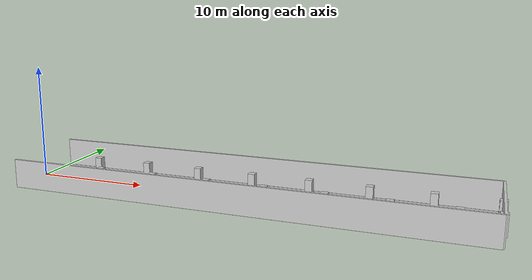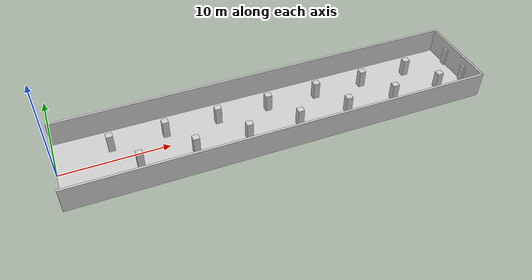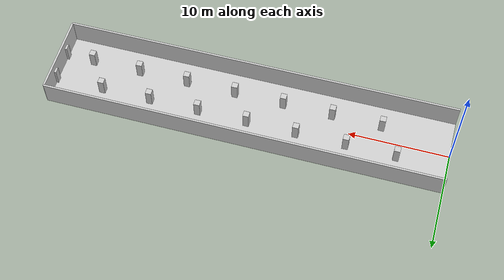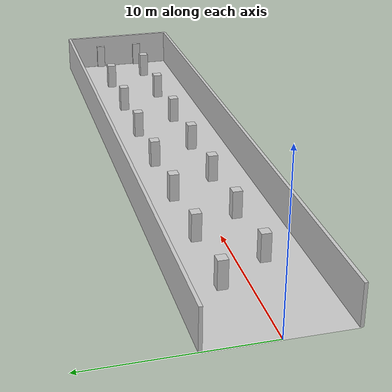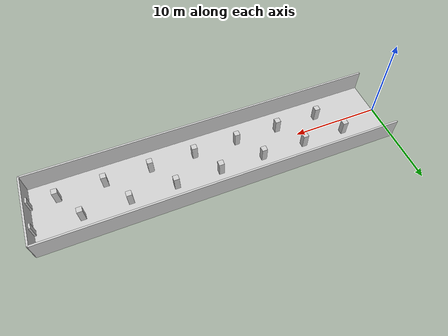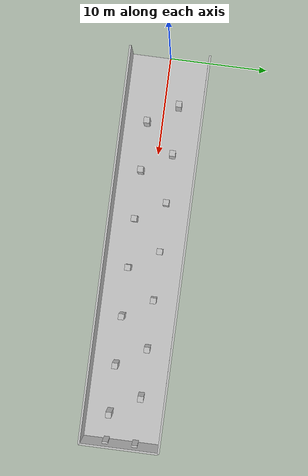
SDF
<?xml version="1.0" ?>
<sdf version="1.9">
  <world name="default">

    <physics name="1ms" type="ignore">
      <max_step_size>0.001</max_step_size>
      <real_time_factor>1.0</real_time_factor>
    </physics>

    <plugin filename="gz-sim-physics-system"
      name="gz::sim::systems::Physics">
    </plugin>

    <plugin
      filename="gz-sim-sensors-system"
      name="gz::sim::systems::Sensors">
      <render_engine>ogre2</render_engine>
    </plugin>

    <plugin filename="gz-sim-user-commands-system"
      name="gz::sim::systems::UserCommands">
    </plugin>
    <plugin filename="gz-sim-scene-broadcaster-system"
      name="gz::sim::systems::SceneBroadcaster">
    </plugin>

    <scene>
      <ambient>0.8 0.8 0.8 1</ambient>
      <background>0.4 0.4 0.4 1</background>
      <shadows>false</shadows>
    </scene>

    <light type="directional" name="sun">
      <cast_shadows>false</cast_shadows>
      <pose>0 0 20 0 0 0</pose>
      <diffuse>1 1 1 1</diffuse>
      <specular>0.0 0.0 0.0 1</specular>
      <direction>-0.5 0.1 -0.9</direction>
    </light>

    <!-- AXES -->

    <!-- ================= RUNWAY GROUND (40m x 8m, centered at x=20) ================= -->
    <model name="runway_ground">
      <static>true</static>
      <pose>20 0 0 0 0 3.14159</pose>
      <link name="link">
        <collision name="collision">
          <geometry>
            <plane><normal>0 0 1</normal><size>40 8</size></plane>
          </geometry>
        </collision>
        <visual name="visual">
          <cast_shadows>false</cast_shadows>
          <geometry>
            <plane><normal>0 0 1</normal><size>40 8</size></plane>
          </geometry>
          <material>
            <ambient>0.8 0.8 0.8 1</ambient>
            <diffuse>0.8 0.8 0.8 1</diffuse>
            <specular>0.0 0.0 0.0 1</specular>
            <pbr><metal>
              <albedo_map>file://materials/textures/runway.png</albedo_map>
              <roughness>1.0</roughness><metalness>0</metalness>
            </metal></pbr>
          </material>
        </visual>
      </link>
    </model>

    <!-- ================= WALLS ================= -->

    <model name="wall_left">
      <static>true</static>
      <pose>20 4 1.25 0 0 0</pose>
      <link name="link">
        <collision name="collision">
          <geometry><box><size>40 0.2 2.5</size></box></geometry>
        </collision>
        <visual name="visual">
          <cast_shadows>false</cast_shadows>
          <geometry><box><size>40 0.2 2.5</size></box></geometry>
          <material>
            <ambient>0.8 0.8 0.8 1</ambient><diffuse>0.8 0.8 0.8 1</diffuse>
            <specular>0.0 0.0 0.0 1</specular>
            <pbr><metal>
              <albedo_map>file://materials/textures/plaster_bricks.jpg</albedo_map>
              <roughness>1.0</roughness><metalness>0</metalness>
            </metal></pbr>
          </material>
        </visual>
      </link>
    </model>

    <model name="wall_right">
      <static>true</static>
      <pose>20 -4 1.25 0 0 0</pose>
      <link name="link">
        <collision name="collision">
          <geometry><box><size>40 0.2 2.5</size></box></geometry>
        </collision>
        <visual name="visual">
          <cast_shadows>false</cast_shadows>
          <geometry><box><size>40 0.2 2.5</size></box></geometry>
          <material>
            <ambient>0.8 0.8 0.8 1</ambient><diffuse>0.8 0.8 0.8 1</diffuse>
            <specular>0.0 0.0 0.0 1</specular>
            <pbr><metal>
              <albedo_map>file://materials/textures/plaster_bricks.jpg</albedo_map>
              <roughness>1.0</roughness><metalness>0</metalness>
            </metal></pbr>
          </material>
        </visual>
      </link>
    </model>

    <model name="wall_back">
      <static>true</static>
      <pose>40 0 1.25 0 0 0</pose>
      <link name="link">
        <collision name="collision">
          <geometry><box><size>0.2 8 2.5</size></box></geometry>
        </collision>
        <visual name="visual">
          <cast_shadows>false</cast_shadows>
          <geometry><box><size>0.2 8 2.5</size></box></geometry>
          <material>
            <ambient>0.8 0.8 0.8 1</ambient><diffuse>0.8 0.8 0.8 1</diffuse>
            <specular>0.0 0.0 0.0 1</specular>
            <pbr><metal>
              <albedo_map>file://materials/textures/plaster_bricks.jpg</albedo_map>
              <roughness>1.0</roughness><metalness>0</metalness>
            </metal></pbr>
          </material>
        </visual>
      </link>
    </model>

    <!-- ================= PILLARS ================= -->

    <!-- LEFT SIDE (y=+1.5) -->
    <model name="pillar_L0">
      <static>true</static>
      <pose>5 1.5 0.875 0 0 0</pose>
      <link name="link">
        <collision name="collision"><geometry><box><size>0.6 0.6 1.75</size></box></geometry></collision>
        <visual name="visual">
          <cast_shadows>false</cast_shadows>
          <geometry><box><size>0.6 0.6 1.75</size></box></geometry>
          <material><ambient>0.8 0.8 0.8 1</ambient><diffuse>0.8 0.8 0.8 1</diffuse><specular>0.0 0.0 0.0 1</specular>
            <pbr><metal><albedo_map>file://materials/media/wall3.png</albedo_map><roughness>1.0</roughness><metalness>0</metalness></metal></pbr>
          </material>
        </visual>
      </link>
    </model>

    <model name="pillar_L1">
      <static>true</static>
      <pose>10 1.5 0.875 0 0 0</pose>
      <link name="link">
        <collision name="collision"><geometry><box><size>0.6 0.6 1.75</size></box></geometry></collision>
        <visual name="visual">
          <cast_shadows>false</cast_shadows>
          <geometry><box><size>0.6 0.6 1.75</size></box></geometry>
          <material><ambient>0.8 0.8 0.8 1</ambient><diffuse>0.8 0.8 0.8 1</diffuse><specular>0.0 0.0 0.0 1</specular>
            <pbr><metal><albedo_map>file://materials/media/wall7.png</albedo_map><roughness>1.0</roughness><metalness>0</metalness></metal></pbr>
          </material>
        </visual>
      </link>
    </model>

    <model name="pillar_L2">
      <static>true</static>
      <pose>15 1.5 0.875 0 0 0</pose>
      <link name="link">
        <collision name="collision"><geometry><box><size>0.6 0.6 1.75</size></box></geometry></collision>
        <visual name="visual">
          <cast_shadows>false</cast_shadows>
          <geometry><box><size>0.6 0.6 1.75</size></box></geometry>
          <material><ambient>0.8 0.8 0.8 1</ambient><diffuse>0.8 0.8 0.8 1</diffuse><specular>0.0 0.0 0.0 1</specular>
            <pbr><metal><albedo_map>file://materials/media/wall12.png</albedo_map><roughness>1.0</roughness><metalness>0</metalness></metal></pbr>
          </material>
        </visual>
      </link>
    </model>

    <model name="pillar_L3">
      <static>true</static>
      <pose>20 1.5 0.875 0 0 0</pose>
      <link name="link">
        <collision name="collision"><geometry><box><size>0.6 0.6 1.75</size></box></geometry></collision>
        <visual name="visual">
          <cast_shadows>false</cast_shadows>
          <geometry><box><size>0.6 0.6 1.75</size></box></geometry>
          <material><ambient>0.8 0.8 0.8 1</ambient><diffuse>0.8 0.8 0.8 1</diffuse><specular>0.0 0.0 0.0 1</specular>
            <pbr><metal><albedo_map>file://materials/media/wall4.png</albedo_map><roughness>1.0</roughness><metalness>0</metalness></metal></pbr>
          </material>
        </visual>
      </link>
    </model>

    <model name="pillar_L4">
      <static>true</static>
      <pose>25 1.5 0.875 0 0 0</pose>
      <link name="link">
        <collision name="collision"><geometry><box><size>0.6 0.6 1.75</size></box></geometry></collision>
        <visual name="visual">
          <cast_shadows>false</cast_shadows>
          <geometry><box><size>0.6 0.6 1.75</size></box></geometry>
          <material><ambient>0.8 0.8 0.8 1</ambient><diffuse>0.8 0.8 0.8 1</diffuse><specular>0.0 0.0 0.0 1</specular>
            <pbr><metal><albedo_map>file://materials/media/wall24.png</albedo_map><roughness>1.0</roughness><metalness>0</metalness></metal></pbr>
          </material>
        </visual>
      </link>
    </model>

    <model name="pillar_L5">
      <static>true</static>
      <pose>30 1.5 0.875 0 0 0</pose>
      <link name="link">
        <collision name="collision"><geometry><box><size>0.6 0.6 1.75</size></box></geometry></collision>
        <visual name="visual">
          <cast_shadows>false</cast_shadows>
          <geometry><box><size>0.6 0.6 1.75</size></box></geometry>
          <material><ambient>0.8 0.8 0.8 1</ambient><diffuse>0.8 0.8 0.8 1</diffuse><specular>0.0 0.0 0.0 1</specular>
            <pbr><metal><albedo_map>file://materials/media/wall20.png</albedo_map><roughness>1.0</roughness><metalness>0</metalness></metal></pbr>
          </material>
        </visual>
      </link>
    </model>

    <model name="pillar_L6">
      <static>true</static>
      <pose>35 1.5 0.875 0 0 0</pose>
      <link name="link">
        <collision name="collision"><geometry><box><size>0.6 0.6 1.75</size></box></geometry></collision>
        <visual name="visual">
          <cast_shadows>false</cast_shadows>
          <geometry><box><size>0.6 0.6 1.75</size></box></geometry>
          <material><ambient>0.8 0.8 0.8 1</ambient><diffuse>0.8 0.8 0.8 1</diffuse><specular>0.0 0.0 0.0 1</specular>
            <pbr><metal><albedo_map>file://materials/media/wall19.png</albedo_map><roughness>1.0</roughness><metalness>0</metalness></metal></pbr>
          </material>
        </visual>
      </link>
    </model>

    <model name="pillar_L7">
      <static>true</static>
      <pose>40 1.5 0.875 0 0 0</pose>
      <link name="link">
        <collision name="collision"><geometry><box><size>0.6 0.6 1.75</size></box></geometry></collision>
        <visual name="visual">
          <cast_shadows>false</cast_shadows>
          <geometry><box><size>0.6 0.6 1.75</size></box></geometry>
          <material><ambient>0.8 0.8 0.8 1</ambient><diffuse>0.8 0.8 0.8 1</diffuse><specular>0.0 0.0 0.0 1</specular>
            <pbr><metal><albedo_map>file://materials/media/wall28.png</albedo_map><roughness>1.0</roughness><metalness>0</metalness></metal></pbr>
          </material>
        </visual>
      </link>
    </model>

    <!-- RIGHT SIDE (y=-1.5), staggered by 2m -->
    <model name="pillar_R0">
      <static>true</static>
      <pose>7 -1.5 0.875 0 0 0</pose>
      <link name="link">
        <collision name="collision"><geometry><box><size>0.6 0.6 1.75</size></box></geometry></collision>
        <visual name="visual">
          <cast_shadows>false</cast_shadows>
          <geometry><box><size>0.6 0.6 1.75</size></box></geometry>
          <material><ambient>0.8 0.8 0.8 1</ambient><diffuse>0.8 0.8 0.8 1</diffuse><specular>0.0 0.0 0.0 1</specular>
            <pbr><metal><albedo_map>file://materials/media/wall18.png</albedo_map><roughness>1.0</roughness><metalness>0</metalness></metal></pbr>
          </material>
        </visual>
      </link>
    </model>

    <model name="pillar_R1">
      <static>true</static>
      <pose>12 -1.5 0.875 0 0 0</pose>
      <link name="link">
        <collision name="collision"><geometry><box><size>0.6 0.6 1.75</size></box></geometry></collision>
        <visual name="visual">
          <cast_shadows>false</cast_shadows>
          <geometry><box><size>0.6 0.6 1.75</size></box></geometry>
          <material><ambient>0.8 0.8 0.8 1</ambient><diffuse>0.8 0.8 0.8 1</diffuse><specular>0.0 0.0 0.0 1</specular>
            <pbr><metal><albedo_map>file://materials/media/wall17.png</albedo_map><roughness>1.0</roughness><metalness>0</metalness></metal></pbr>
          </material>
        </visual>
      </link>
    </model>

    <model name="pillar_R2">
      <static>true</static>
      <pose>17 -1.5 0.875 0 0 0</pose>
      <link name="link">
        <collision name="collision"><geometry><box><size>0.6 0.6 1.75</size></box></geometry></collision>
        <visual name="visual">
          <cast_shadows>false</cast_shadows>
          <geometry><box><size>0.6 0.6 1.75</size></box></geometry>
          <material><ambient>0.8 0.8 0.8 1</ambient><diffuse>0.8 0.8 0.8 1</diffuse><specular>0.0 0.0 0.0 1</specular>
            <pbr><metal><albedo_map>file://materials/media/wall16.png</albedo_map><roughness>1.0</roughness><metalness>0</metalness></metal></pbr>
          </material>
        </visual>
      </link>
    </model>

    <model name="pillar_R3">
      <static>true</static>
      <pose>22 -1.5 0.875 0 0 0</pose>
      <link name="link">
        <collision name="collision"><geometry><box><size>0.6 0.6 1.75</size></box></geometry></collision>
        <visual name="visual">
          <cast_shadows>false</cast_shadows>
          <geometry><box><size>0.6 0.6 1.75</size></box></geometry>
          <material><ambient>0.8 0.8 0.8 1</ambient><diffuse>0.8 0.8 0.8 1</diffuse><specular>0.0 0.0 0.0 1</specular>
            <pbr><metal><albedo_map>file://materials/media/wall15.png</albedo_map><roughness>1.0</roughness><metalness>0</metalness></metal></pbr>
          </material>
        </visual>
      </link>
    </model>

    <model name="pillar_R4">
      <static>true</static>
      <pose>27 -1.5 0.875 0 0 0</pose>
      <link name="link">
        <collision name="collision"><geometry><box><size>0.6 0.6 1.75</size></box></geometry></collision>
        <visual name="visual">
          <cast_shadows>false</cast_shadows>
          <geometry><box><size>0.6 0.6 1.75</size></box></geometry>
          <material><ambient>0.8 0.8 0.8 1</ambient><diffuse>0.8 0.8 0.8 1</diffuse><specular>0.0 0.0 0.0 1</specular>
            <pbr><metal><albedo_map>file://materials/media/wall14.png</albedo_map><roughness>1.0</roughness><metalness>0</metalness></metal></pbr>
          </material>
        </visual>
      </link>
    </model>

    <model name="pillar_R5">
      <static>true</static>
      <pose>32 -1.5 0.875 0 0 0</pose>
      <link name="link">
        <collision name="collision"><geometry><box><size>0.6 0.6 1.75</size></box></geometry></collision>
        <visual name="visual">
          <cast_shadows>false</cast_shadows>
          <geometry><box><size>0.6 0.6 1.75</size></box></geometry>
          <material><ambient>0.8 0.8 0.8 1</ambient><diffuse>0.8 0.8 0.8 1</diffuse><specular>0.0 0.0 0.0 1</specular>
            <pbr><metal><albedo_map>file://materials/media/wall6.png</albedo_map><roughness>1.0</roughness><metalness>0</metalness></metal></pbr>
          </material>
        </visual>
      </link>
    </model>

    <model name="pillar_R6">
      <static>true</static>
      <pose>37 -1.5 0.875 0 0 0</pose>
      <link name="link">
        <collision name="collision"><geometry><box><size>0.6 0.6 1.75</size></box></geometry></collision>
        <visual name="visual">
          <cast_shadows>false</cast_shadows>
          <geometry><box><size>0.6 0.6 1.75</size></box></geometry>
          <material><ambient>0.8 0.8 0.8 1</ambient><diffuse>0.8 0.8 0.8 1</diffuse><specular>0.0 0.0 0.0 1</specular>
            <pbr><metal><albedo_map>file://materials/media/wall10.png</albedo_map><roughness>1.0</roughness><metalness>0</metalness></metal></pbr>
          </material>
        </visual>
      </link>
    </model>

    <model name="pillar_R7">
      <static>true</static>
      <pose>40 -1.5 0.875 0 0 0</pose>
      <link name="link">
        <collision name="collision"><geometry><box><size>0.6 0.6 1.75</size></box></geometry></collision>
        <visual name="visual">
          <cast_shadows>false</cast_shadows>
          <geometry><box><size>0.6 0.6 1.75</size></box></geometry>
          <material><ambient>0.8 0.8 0.8 1</ambient><diffuse>0.8 0.8 0.8 1</diffuse><specular>0.0 0.0 0.0 1</specular>
            <pbr><metal><albedo_map>file://materials/media/wall26.png</albedo_map><roughness>1.0</roughness><metalness>0</metalness></metal></pbr>
          </material>
        </visual>
      </link>
    </model>

  </world>
</sdf>
